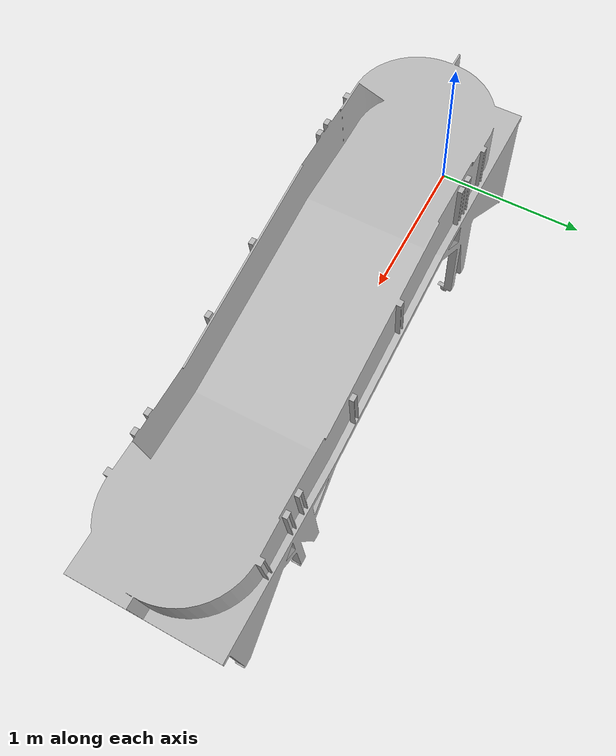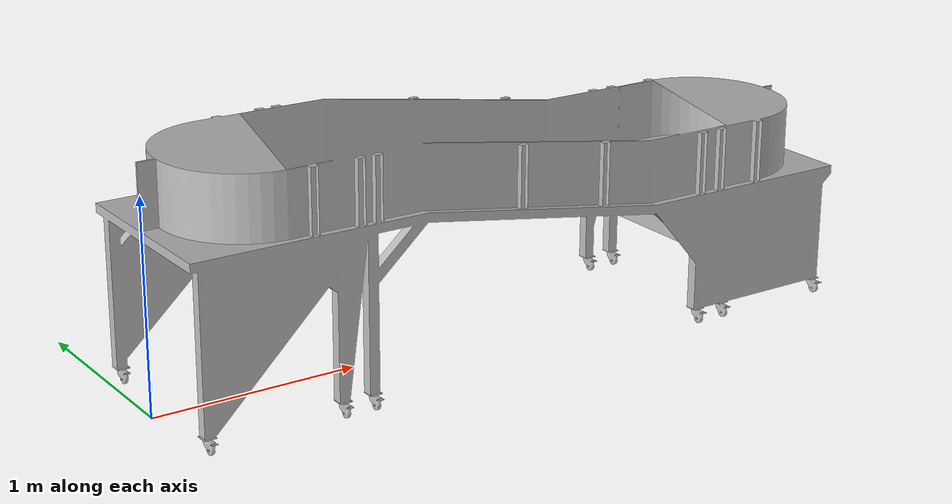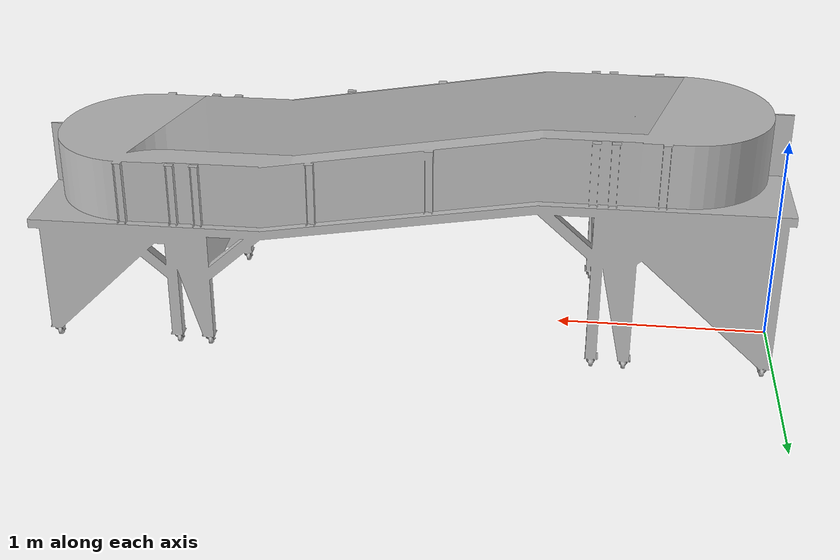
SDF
<?xml version="1.0" ?>

<sdf version="1.9">
  <!-- Model of the ramp circuit -->
  <model name="ramp_circuit">
    <static>true</static>
    <link name="circuit_link">
      <collision name="circuit_collision">
        <pose degrees="true">0 0 0 90 0 0</pose>
        <geometry>
          <mesh>
            <uri>meshes/Pista_buena_v29.obj</uri>
          </mesh>
        </geometry>
      </collision>

      <visual name="circuit_visual">
        <pose degrees="true">0 0 0 90 0 0</pose>
        <geometry>
          <mesh>
            <uri>meshes/Pista_buena_v29.obj</uri>
          </mesh>
        </geometry>
      </visual>
    </link>
  </model>
</sdf>
